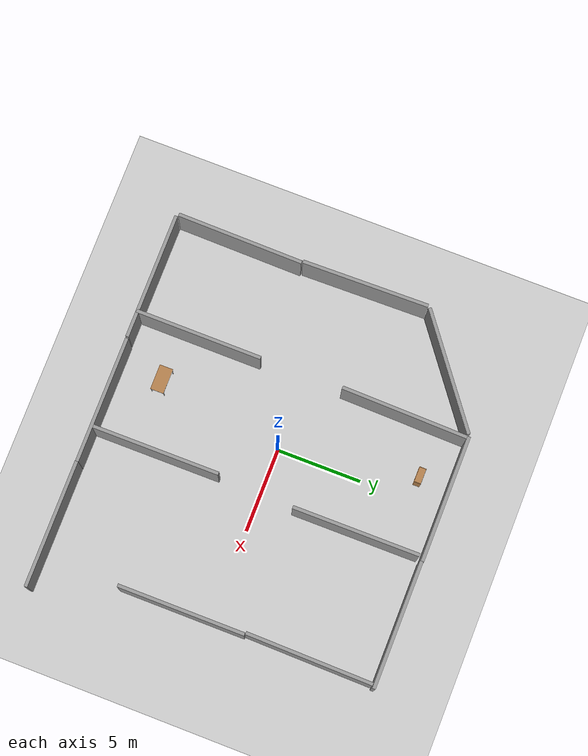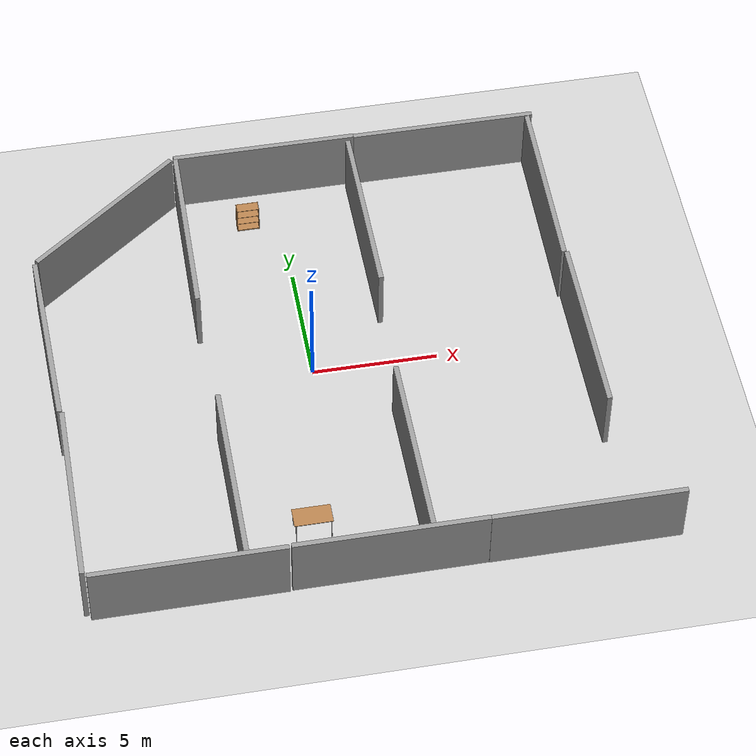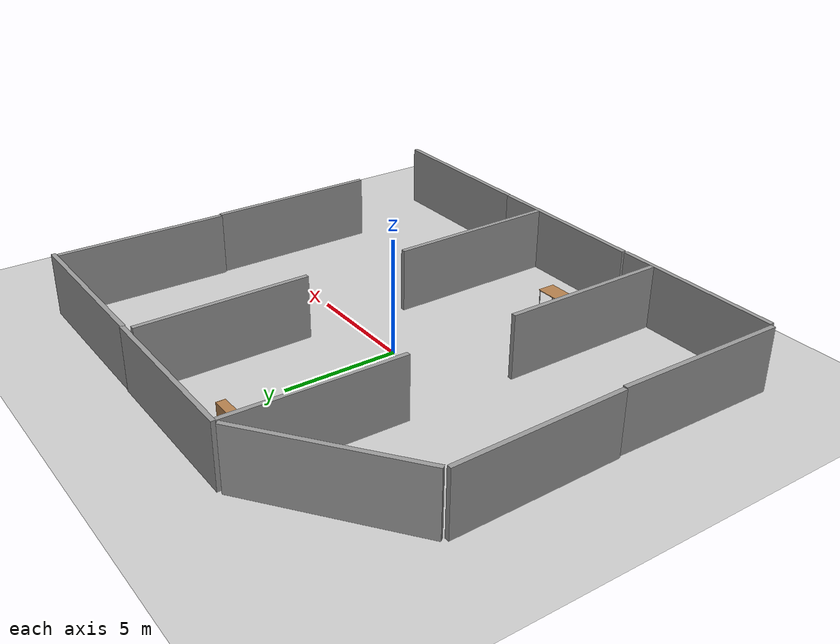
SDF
<sdf version="1.6">
 <world name="default">
  <light name="sun" type="directional">
   <pose>0 0 10 0 -0 0</pose>
   <diffuse>0.8 0.8 0.8 1</diffuse>
   <specular>0.2 0.2 0.2 1</specular>
   <attenuation>
    <range>1000</range>
    <constant>0.9</constant>
    <linear>0.01</linear>
    <quadratic>0.001</quadratic>
   </attenuation>
   <direction>-0.5 0.1 -0.9</direction>
  </light>
  <model name="ground_plane">
   <static>1</static>
   <link name="link">
    <collision name="collision">
     <geometry><plane><normal>0 0 1</normal><size>100 100</size></plane></geometry>
     <surface>
      <contact><collide_bitmask>65535</collide_bitmask></contact>
      <friction><ode><mu>100</mu><mu2>50</mu2></ode></friction>
     </surface>
    </collision>
    <visual name="visual">
     <cast_shadows>0</cast_shadows>
     <geometry><plane><normal>0 0 1</normal><size>100 100</size></plane></geometry>
     <material>
      <script><uri>file://media/materials/scripts/gazebo.material</uri><name>Gazebo/Grey</name></script>
     </material>
    </visual>
   </link>
  </model>
  <gravity>0 0 -9.8</gravity>
  <magnetic_field>6e-06 2.3e-05 -4.2e-05</magnetic_field>
  <atmosphere type="adiabatic"/>
  <physics name="default_physics" default="0" type="ode">
   <max_step_size>0.001</max_step_size>
   <real_time_factor>1</real_time_factor>
   <real_time_update_rate>1000</real_time_update_rate>
  </physics>
  <scene><ambient>0.4 0.4 0.4 1</ambient><background>0.7 0.7 0.7 1</background><shadows>1</shadows></scene>
  <audio><device>default</device></audio>
  <spherical_coordinates>
   <surface_model>EARTH_WGS84</surface_model>
   <latitude_deg>0</latitude_deg>
   <longitude_deg>0</longitude_deg>
   <elevation>0</elevation>
   <heading_deg>0</heading_deg>
  </spherical_coordinates>
  <model name="grey_wall">
   <static>1</static>
   <link name="link">
    <pose>0 0 1.4 0 -0 0</pose>
    <collision name="collision"><geometry><box><size>7.5 0.2 2.8</size></box></geometry></collision>
    <visual name="visual">
     <cast_shadows>0</cast_shadows>
     <geometry><box><size>7.5 0.2 2.8</size></box></geometry>
     <material>
      <script>
       <uri>model://grey_wall/materials/scripts</uri>
       <uri>model://grey_wall/materials/textures</uri>
       <name>vrc/grey_wall</name>
      </script>
     </material>
    </visual>
   </link>
   <pose>-6.30051 -10.0755 0 0 -0 0</pose>
  </model>
  <model name="grey_wall_0">
   <static>1</static>
   <link name="link">
    <pose>0 0 1.4 0 -0 0</pose>
    <collision name="collision"><geometry><box><size>7.5 0.2 2.8</size></box></geometry></collision>
    <visual name="visual">
     <cast_shadows>0</cast_shadows>
     <geometry><box><size>7.5 0.2 2.8</size></box></geometry>
     <material>
      <script>
       <uri>model://grey_wall/materials/scripts</uri>
       <uri>model://grey_wall/materials/textures</uri>
       <name>vrc/grey_wall</name>
      </script>
     </material>
    </visual>
   </link>
   <pose>1.2851 -10.046 0 0 -0 0</pose>
  </model>
  <model name="grey_wall_1">
   <static>1</static>
   <link name="link">
    <pose>0 0 1.4 0 -0 0</pose>
    <collision name="collision"><geometry><box><size>7.5 0.2 2.8</size></box></geometry></collision>
    <visual name="visual">
     <cast_shadows>0</cast_shadows>
     <geometry><box><size>7.5 0.2 2.8</size></box></geometry>
     <material>
      <script>
       <uri>model://grey_wall/materials/scripts</uri>
       <uri>model://grey_wall/materials/textures</uri>
       <name>vrc/grey_wall</name>
      </script>
     </material>
    </visual>
   </link>
   <pose>8.78556 -10.0592 0 0 -0 0</pose>
  </model>
  <model name="grey_wall_2">
   <static>1</static>
   <link name="link">
    <pose>0 0 1.4 0 -0 0</pose>
    <collision name="collision"><geometry><box><size>7.5 0.2 2.8</size></box></geometry></collision>
    <visual name="visual">
     <cast_shadows>0</cast_shadows>
     <geometry><box><size>7.5 0.2 2.8</size></box></geometry>
     <material>
      <script>
       <uri>model://grey_wall/materials/scripts</uri>
       <uri>model://grey_wall/materials/textures</uri>
       <name>vrc/grey_wall</name>
      </script>
     </material>
    </visual>
   </link>
   <pose>-10.144 -6.21608 0 0 0 -1.58381</pose>
  </model>
  <model name="grey_wall_3">
   <static>1</static>
   <link name="link">
    <pose>0 0 1.4 0 -0 0</pose>
    <collision name="collision"><geometry><box><size>7.5 0.2 2.8</size></box></geometry></collision>
    <visual name="visual">
     <cast_shadows>0</cast_shadows>
     <geometry><box><size>7.5 0.2 2.8</size></box></geometry>
     <material>
      <script>
       <uri>model://grey_wall/materials/scripts</uri>
       <uri>model://grey_wall/materials/textures</uri>
       <name>vrc/grey_wall</name>
      </script>
     </material>
    </visual>
   </link>
   <pose>-10.2448 1.33786 0 0 0 -1.55208</pose>
  </model>
  <model name="grey_wall_4">
   <static>1</static>
   <link name="link">
    <pose>0 0 1.4 0 -0 0</pose>
    <collision name="collision"><geometry><box><size>7.5 0.2 2.8</size></box></geometry></collision>
    <visual name="visual">
     <cast_shadows>0</cast_shadows>
     <geometry><box><size>7.5 0.2 2.8</size></box></geometry>
     <material>
      <script>
       <uri>model://grey_wall/materials/scripts</uri>
       <uri>model://grey_wall/materials/textures</uri>
       <name>vrc/grey_wall</name>
      </script>
     </material>
    </visual>
   </link>
   <pose>-7.24275 7.47311 0 0 -0 0.64877</pose>
  </model>
  <model name="grey_wall_5">
   <static>1</static>
   <link name="link">
    <pose>0 0 1.4 0 -0 0</pose>
    <collision name="collision"><geometry><box><size>7.5 0.2 2.8</size></box></geometry></collision>
    <visual name="visual">
     <cast_shadows>0</cast_shadows>
     <geometry><box><size>7.5 0.2 2.8</size></box></geometry>
     <material>
      <script>
       <uri>model://grey_wall/materials/scripts</uri>
       <uri>model://grey_wall/materials/textures</uri>
       <name>vrc/grey_wall</name>
      </script>
     </material>
    </visual>
   </link>
   <pose>-0.381916 9.81247 0 0 -0 0</pose>
  </model>
  <model name="grey_wall_6">
   <static>1</static>
   <link name="link">
    <pose>0 0 1.4 0 -0 0</pose>
    <collision name="collision"><geometry><box><size>7.5 0.2 2.8</size></box></geometry></collision>
    <visual name="visual">
     <cast_shadows>0</cast_shadows>
     <geometry><box><size>7.5 0.2 2.8</size></box></geometry>
     <material>
      <script>
       <uri>model://grey_wall/materials/scripts</uri>
       <uri>model://grey_wall/materials/textures</uri>
       <name>vrc/grey_wall</name>
      </script>
     </material>
    </visual>
   </link>
   <pose>7.08946 9.78088 0 0 -0 0</pose>
  </model>
  <model name="grey_wall_7">
   <static>1</static>
   <link name="link">
    <pose>0 0 1.4 0 -0 0</pose>
    <collision name="collision"><geometry><box><size>7.5 0.2 2.8</size></box></geometry></collision>
    <visual name="visual">
     <cast_shadows>0</cast_shadows>
     <geometry><box><size>7.5 0.2 2.8</size></box></geometry>
     <material>
      <script>
       <uri>model://grey_wall/materials/scripts</uri>
       <uri>model://grey_wall/materials/textures</uri>
       <name>vrc/grey_wall</name>
      </script>
     </material>
    </visual>
   </link>
   <pose>10.5702 5.90859 -0 0 0 -1.5847</pose>
  </model>
  <model name="grey_wall_8">
   <static>1</static>
   <link name="link">
    <pose>0 0 1.4 0 -0 0</pose>
    <collision name="collision"><geometry><box><size>7.5 0.2 2.8</size></box></geometry></collision>
    <visual name="visual">
     <cast_shadows>0</cast_shadows>
     <geometry><box><size>7.5 0.2 2.8</size></box></geometry>
     <material>
      <script>
       <uri>model://grey_wall/materials/scripts</uri>
       <uri>model://grey_wall/materials/textures</uri>
       <name>vrc/grey_wall</name>
      </script>
     </material>
    </visual>
   </link>
   <pose>10.6211 -1.61931 0 0 0 -1.56995</pose>
  </model>
  <model name="grey_wall_9">
   <static>1</static>
   <link name="link">
    <pose>0 0 1.4 0 -0 0</pose>
    <collision name="collision"><geometry><box><size>7.5 0.2 2.8</size></box></geometry></collision>
    <visual name="visual">
     <cast_shadows>0</cast_shadows>
     <geometry><box><size>7.5 0.2 2.8</size></box></geometry>
     <material>
      <script>
       <uri>model://grey_wall/materials/scripts</uri>
       <uri>model://grey_wall/materials/textures</uri>
       <name>vrc/grey_wall</name>
      </script>
     </material>
    </visual>
   </link>
   <pose>3.08265 5.81 0 0 0 -1.56729</pose>
  </model>
  <model name="grey_wall_10">
   <static>1</static>
   <link name="link">
    <pose>0 0 1.4 0 -0 0</pose>
    <collision name="collision"><geometry><box><size>7.5 0.2 2.8</size></box></geometry></collision>
    <visual name="visual">
     <cast_shadows>0</cast_shadows>
     <geometry><box><size>7.5 0.2 2.8</size></box></geometry>
     <material>
      <script>
       <uri>model://grey_wall/materials/scripts</uri>
       <uri>model://grey_wall/materials/textures</uri>
       <name>vrc/grey_wall</name>
      </script>
     </material>
    </visual>
   </link>
   <pose>2.85587 -6.19356 0 0 -0 1.57405</pose>
  </model>
  <model name="grey_wall_11">
   <static>1</static>
   <link name="link">
    <pose>0 0 1.4 0 -0 0</pose>
    <collision name="collision"><geometry><box><size>7.5 0.2 2.8</size></box></geometry></collision>
    <visual name="visual">
     <cast_shadows>0</cast_shadows>
     <geometry><box><size>7.5 0.2 2.8</size></box></geometry>
     <material>
      <script>
       <uri>model://grey_wall/materials/scripts</uri>
       <uri>model://grey_wall/materials/textures</uri>
       <name>vrc/grey_wall</name>
      </script>
     </material>
    </visual>
   </link>
   <pose>-4.12927 5.98401 -0 0 0 -1.59006</pose>
  </model>
  <model name="grey_wall_12">
   <static>1</static>
   <link name="link">
    <pose>0 0 1.4 0 -0 0</pose>
    <collision name="collision"><geometry><box><size>7.5 0.2 2.8</size></box></geometry></collision>
    <visual name="visual">
     <cast_shadows>0</cast_shadows>
     <geometry><box><size>7.5 0.2 2.8</size></box></geometry>
     <material>
      <script>
       <uri>model://grey_wall/materials/scripts</uri>
       <uri>model://grey_wall/materials/textures</uri>
       <name>vrc/grey_wall</name>
      </script>
     </material>
    </visual>
   </link>
   <pose>-4.12455 -6.38502 0 0 -0 1.56885</pose>
  </model>
  <model name="bookshelf">
   <static>1</static>
   <link name="link">
    <inertial><mass>1</mass></inertial>
    <collision name="back">
     <pose>0 0.005 0.6 0 -0 0</pose>
     <geometry><box><size>0.9 0.01 1.2</size></box></geometry>
    </collision>
    <visual name="visual1">
     <pose>0 0.005 0.6 0 -0 0</pose>
     <geometry><box><size>0.9 0.01 1.2</size></box></geometry>
     <material>
      <script><uri>file://media/materials/scripts/gazebo.material</uri><name>Gazebo/Wood</name></script>
     </material>
    </visual>
    <collision name="left_side">
     <pose>0.45 -0.195 0.6 0 -0 0</pose>
     <geometry><box><size>0.02 0.4 1.2</size></box></geometry>
    </collision>
    <visual name="visual2">
     <pose>0.45 -0.195 0.6 0 -0 0</pose>
     <geometry><box><size>0.02 0.4 1.2</size></box></geometry>
     <material>
      <script><uri>file://media/materials/scripts/gazebo.material</uri><name>Gazebo/Wood</name></script>
     </material>
    </visual>
    <collision name="right_side">
     <pose>-0.45 -0.195 0.6 0 -0 0</pose>
     <geometry><box><size>0.02 0.4 1.2</size></box></geometry>
    </collision>
    <visual name="visual3">
     <pose>-0.45 -0.195 0.6 0 -0 0</pose>
     <geometry><box><size>0.02 0.4 1.2</size></box></geometry>
     <material>
      <script><uri>file://media/materials/scripts/gazebo.material</uri><name>Gazebo/Wood</name></script>
     </material>
    </visual>
    <collision name="bottom">
     <pose>0 -0.195 0.03 0 -0 0</pose>
     <geometry><box><size>0.88 0.4 0.06</size></box></geometry>
    </collision>
    <visual name="visual4">
     <pose>0 -0.195 0.03 0 -0 0</pose>
     <geometry><box><size>0.88 0.4 0.06</size></box></geometry>
     <material>
      <script><uri>file://media/materials/scripts/gazebo.material</uri><name>Gazebo/Wood</name></script>
     </material>
    </visual>
    <collision name="top">
     <pose>0 -0.195 1.19 0 -0 0</pose>
     <geometry><box><size>0.88 0.4 0.02</size></box></geometry>
    </collision>
    <visual name="visual5">
     <pose>0 -0.195 1.19 0 -0 0</pose>
     <geometry><box><size>0.88 0.4 0.02</size></box></geometry>
     <material>
      <script><uri>file://media/materials/scripts/gazebo.material</uri><name>Gazebo/Wood</name></script>
     </material>
    </visual>
    <collision name="low_shelf">
     <pose>0 -0.195 0.43 0 -0 0</pose>
     <geometry><box><size>0.88 0.4 0.02</size></box></geometry>
    </collision>
    <visual name="visual6">
     <pose>0 -0.195 0.43 0 -0 0</pose>
     <geometry><box><size>0.88 0.4 0.02</size></box></geometry>
     <material>
      <script><uri>file://media/materials/scripts/gazebo.material</uri><name>Gazebo/Wood</name></script>
     </material>
    </visual>
    <collision name="high_shelf">
     <pose>0 -0.195 0.8 0 -0 0</pose>
     <geometry><box><size>0.88 0.4 0.02</size></box></geometry>
    </collision>
    <visual name="visual7">
     <pose>0 -0.195 0.8 0 -0 0</pose>
     <geometry><box><size>0.88 0.4 0.02</size></box></geometry>
     <material>
      <script><uri>file://media/materials/scripts/gazebo.material</uri><name>Gazebo/Wood</name></script>
     </material>
    </visual>
   </link>
   <pose>-1.37589 8.25965 0 0 -0 0</pose>
  </model>
  <model name="table">
   <static>1</static>
   <link name="link">
    <collision name="surface">
     <pose>0 0 1 0 -0 0</pose>
     <geometry><box><size>1.5 0.8 0.03</size></box></geometry>
     <surface><friction><ode><mu>0.6</mu><mu2>0.6</mu2></ode></friction></surface>
    </collision>
    <visual name="visual1">
     <pose>0 0 1 0 -0 0</pose>
     <geometry><box><size>1.5 0.8 0.03</size></box></geometry>
     <material>
      <script><uri>file://media/materials/scripts/gazebo.material</uri><name>Gazebo/Wood</name></script>
     </material>
    </visual>
    <collision name="front_left_leg">
     <pose>0.68 0.38 0.5 0 -0 0</pose>
     <geometry><cylinder><radius>0.02</radius><length>1</length></cylinder></geometry>
    </collision>
    <visual name="front_left_leg">
     <pose>0.68 0.38 0.5 0 -0 0</pose>
     <geometry><cylinder><radius>0.02</radius><length>1</length></cylinder></geometry>
     <material>
      <script><uri>file://media/materials/scripts/gazebo.material</uri><name>Gazebo/Grey</name></script>
     </material>
    </visual>
    <collision name="front_right_leg">
     <pose>0.68 -0.38 0.5 0 -0 0</pose>
     <geometry><cylinder><radius>0.02</radius><length>1</length></cylinder></geometry>
    </collision>
    <visual name="front_right_leg">
     <pose>0.68 -0.38 0.5 0 -0 0</pose>
     <geometry><cylinder><radius>0.02</radius><length>1</length></cylinder></geometry>
     <material>
      <script><uri>file://media/materials/scripts/gazebo.material</uri><name>Gazebo/Grey</name></script>
     </material>
    </visual>
    <collision name="back_right_leg">
     <pose>-0.68 -0.38 0.5 0 -0 0</pose>
     <geometry><cylinder><radius>0.02</radius><length>1</length></cylinder></geometry>
    </collision>
    <visual name="back_right_leg">
     <pose>-0.68 -0.38 0.5 0 -0 0</pose>
     <geometry><cylinder><radius>0.02</radius><length>1</length></cylinder></geometry>
     <material>
      <script><uri>file://media/materials/scripts/gazebo.material</uri><name>Gazebo/Grey</name></script>
     </material>
    </visual>
    <collision name="back_left_leg">
     <pose>-0.68 0.38 0.5 0 -0 0</pose>
     <geometry><cylinder><radius>0.02</radius><length>1</length></cylinder></geometry>
    </collision>
    <visual name="back_left_leg">
     <pose>-0.68 0.38 0.5 0 -0 0</pose>
     <geometry><cylinder><radius>0.02</radius><length>1</length></cylinder></geometry>
     <material>
      <script><uri>file://media/materials/scripts/gazebo.material</uri><name>Gazebo/Grey</name></script>
     </material>
    </visual>
   </link>
   <pose>-1.28409 -7.58165 0 0 -0 0</pose>
  </model>
 </world>
</sdf>
